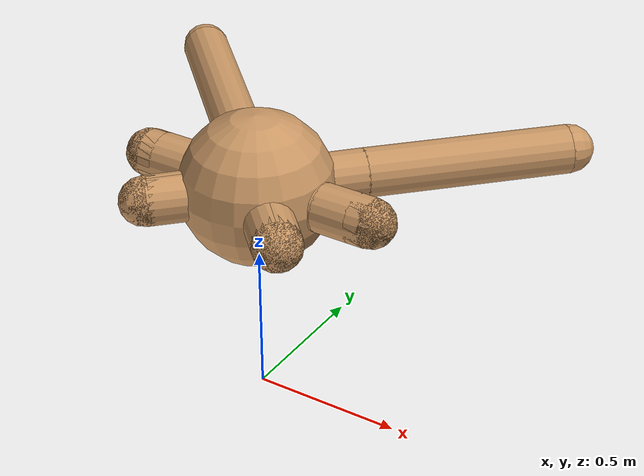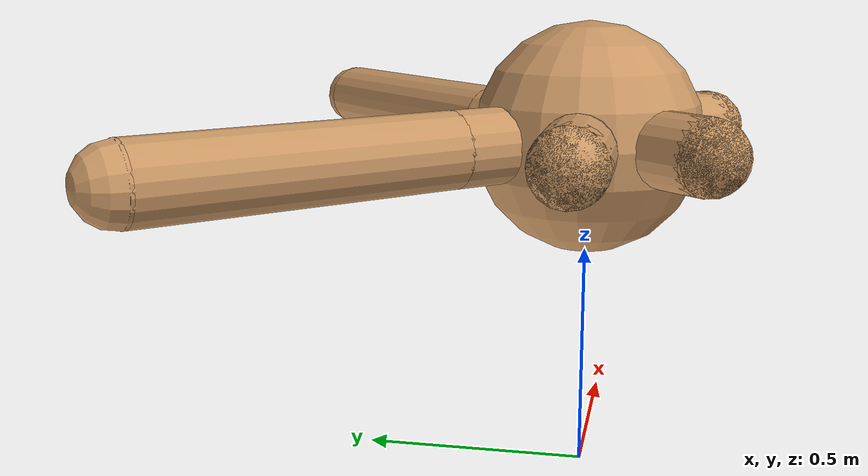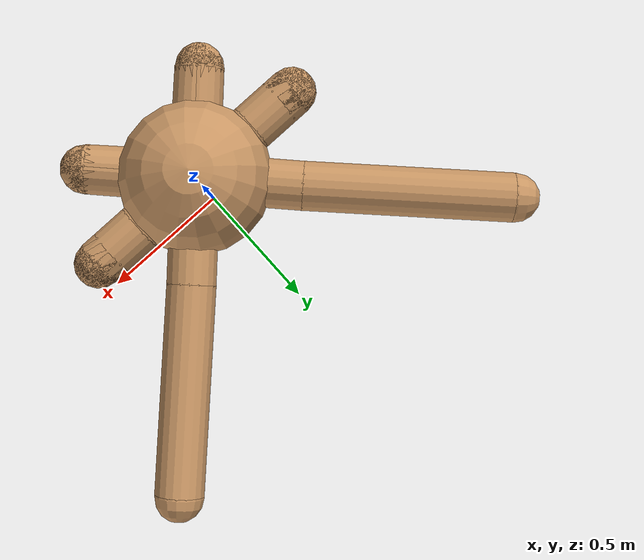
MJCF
<?xml version="1.0" ?>
<mujoco>
    <default>
        <joint armature="1" damping="1" limited="true"/>
        <geom condim="3" conaffinity="0" density="5.0" friction="1 0.5 0.5" margin="0.01"/>
    </default>
    <worldbody>
        <body name="Base" pos="0.0 0.0 0.75">
            <joint type="free" armature="0" damping="0" limited="false" margin="0.01" pos="0 0 0"/>
            <geom type="sphere" rgba="0.8 0.6 0.4 1" size="0.25"/>
            <camera name="track" mode="trackcom" pos="0 -6 0.6" xyaxes="1 0 0 0 0 1"/>
            <geom name="limb0" type="capsule" fromto="0 0 0 0.24 0.25 0.0" size="0.08" rgba="0.8 0.6 0.4 1"/>
            <body name="rod_0.1" pos="0.47848171044347243 0.48848171044347244 0.0">
                <geom type="capsule" fromto="-0.23848171044347244 -0.23848171044347244 -0.0 0.23848171044347244 0.23848171044347244 0.0" size="0.08" name="geom_0.1" rgba="0.8 0.6 0.4 1"/>
                <site pos="0 0 0" quat="0.9238795325112867 0.0 0.0 0.38268343236508984" name="site_0.1"/>
                <joint type="hinge" pos="-0.23848171044347244 -0.23848171044347244 -0.0" axis="0 0 1" range="-30 30" name="joint_Base=rod_0.1"/>
                <body pos="-0.23848171044347244 -0.23848171044347244 -0.0" name="p0">
                    <site name="p0"/>
                </body>
                <body name="rod_1.2" pos="0.24102822421364956 0.24102822421364956 0.0">
                    <geom type="capsule" fromto="-0.0025465137701771168 -0.0025465137701771168 -0.0 0.0025465137701771168 0.0025465137701771168 0.0" size="0.08" name="geom_1.2" rgba="0.8 0.6 0.4 1"/>
                    <site pos="0 0 0" quat="0.9238795325112867 0.0 0.0 0.3826834323650898" name="site_1.2"/>
                    <joint type="hinge" pos="-0.0025465137701771168 -0.0025465137701771168 -0.0" axis="-1 1 0" range="30 70" name="joint_rod_0.1=rod_1.2"/>
                    <body pos="-0.0025465137701771168 -0.0025465137701771168 -0.0" name="p1">
                        <site name="p1"/>
                    </body>
                </body>
            </body>
            <geom name="limb1" type="capsule" fromto="0 0 0 -0.24 0.25 0.0" size="0.08" rgba="0.8 0.6 0.4 1"/>
            <body name="rod_3.4" pos="-0.47848171044347243 0.48848171044347244 0.0">
                <geom type="capsule" fromto="0.23848171044347244 -0.23848171044347244 -0.0 -0.23848171044347244 0.23848171044347244 0.0" size="0.08" name="geom_3.4" rgba="0.8 0.6 0.4 1"/>
                <site pos="0 0 0" quat="0.38268343236508984 0.0 -0.0 0.9238795325112867" name="site_3.4"/>
                <joint type="hinge" pos="0.23848171044347244 -0.23848171044347244 -0.0" axis="0 0 1" range="-30 30" name="joint_Base=rod_3.4"/>
                <body pos="0.23848171044347244 -0.23848171044347244 -0.0" name="p3">
                    <site name="p3"/>
                </body>
                <body name="rod_4.5" pos="-0.24102822421364956 0.24102822421364956 0.0">
                    <geom type="capsule" fromto="0.0025465137701771168 -0.0025465137701771168 -0.0 -0.0025465137701771168 0.0025465137701771168 0.0" size="0.08" name="geom_4.5" rgba="0.8 0.6 0.4 1"/>
                    <site pos="0 0 0" quat="0.38268343236508984 0.0 -0.0 0.9238795325112867" name="site_4.5"/>
                    <joint type="hinge" pos="0.0025465137701771168 -0.0025465137701771168 -0.0" axis="1 1 0" range="30 70" name="joint_rod_3.4=rod_4.5"/>
                    <body pos="0.0025465137701771168 -0.0025465137701771168 -0.0" name="p4">
                        <site name="p4"/>
                    </body>
                </body>
            </body>
            <geom name="limb2" type="capsule" fromto="0 0 0 0.24 0.0 0.0" size="0.08" rgba="0.8 0.6 0.4 1"/>
            <body name="rod_6.7" pos="0.327570393389909 0.0 0.0">
                <geom type="capsule" fromto="-0.08757039338990899 -0.0 -0.0 0.08757039338990899 0.0 0.0" size="0.08" name="geom_6.7" rgba="0.8 0.6 0.4 1"/>
                <site pos="0 0 0" quat="1.0 0.0 0.0 0.0" name="site_6.7"/>
                <joint type="hinge" pos="-0.08757039338990899 -0.0 -0.0" axis="0 0 1" range="-30 30" name="joint_Base=rod_6.7"/>
                <body pos="-0.08757039338990899 -0.0 -0.0" name="p6">
                    <site name="p6"/>
                </body>
                <body name="rod_7.8" pos="0.060619960252114025 0.0 0.0">
                    <geom type="capsule" fromto="0.026950433137794966 -0.0 -0.0 -0.026950433137794966 0.0 0.0" size="0.08" name="geom_7.8" rgba="0.8 0.6 0.4 1"/>
                    <site pos="0 0 0" quat="0.0 1.0 0.0 0.0" name="site_7.8"/>
                    <joint type="hinge" pos="0.026950433137794966 -0.0 -0.0" axis="-1 1 0" range="-20 40" name="joint_rod_6.7=rod_7.8"/>
                    <body pos="0.026950433137794966 -0.0 -0.0" name="p7">
                        <site name="p7"/>
                    </body>
                </body>
            </body>
            <geom name="limb3" type="capsule" fromto="0 0 0 -0.24 0.0 0.0" size="0.08" rgba="0.8 0.6 0.4 1"/>
            <body name="rod_9.10" pos="-0.327570393389909 0.0 0.0">
                <geom type="capsule" fromto="0.08757039338990899 -0.0 -0.0 -0.08757039338990899 0.0 0.0" size="0.08" name="geom_9.10" rgba="0.8 0.6 0.4 1"/>
                <site pos="0 0 0" quat="0.0 1.0 0.0 0.0" name="site_9.10"/>
                <joint type="hinge" pos="0.08757039338990899 -0.0 -0.0" axis="0 0 1" range="-30 30" name="joint_Base=rod_9.10"/>
                <body pos="0.08757039338990899 -0.0 -0.0" name="p9">
                    <site name="p9"/>
                </body>
                <body name="rod_10.11" pos="-0.060619960252114025 0.0 0.0">
                    <geom type="capsule" fromto="-0.026950433137794966 -0.0 -0.0 0.026950433137794966 0.0 0.0" size="0.08" name="geom_10.11" rgba="0.8 0.6 0.4 1"/>
                    <site pos="0 0 0" quat="1.0 0.0 0.0 0.0" name="site_10.11"/>
                    <joint type="hinge" pos="-0.026950433137794966 -0.0 -0.0" axis="1 1 0" range="-20 40" name="joint_rod_9.10=rod_10.11"/>
                    <body pos="-0.026950433137794966 -0.0 -0.0" name="p10">
                        <site name="p10"/>
                    </body>
                </body>
            </body>
            <geom name="limb4" type="capsule" fromto="0 0 0 -0.24 -0.25 0.0" size="0.08" rgba="0.8 0.6 0.4 1"/>
            <body name="rod_12.13" pos="-0.24331233408652592 -0.253312334086526 0.0">
                <geom type="capsule" fromto="0.0033123340865259393 0.003312334086525953 -0.0 -0.0033123340865259393 -0.003312334086525953 0.0" size="0.08" name="geom_12.13" rgba="0.8 0.6 0.4 1"/>
                <site pos="0 0 0" quat="0.3826834323650906 0.0 -0.0 -0.9238795325112864" name="site_12.13"/>
                <joint type="hinge" pos="0.0033123340865259393 0.003312334086525953 -0.0" axis="0 0 1" range="-30 30" name="joint_Base=rod_12.13"/>
                <body pos="0.0033123340865259393 0.003312334086525953 -0.0" name="p12">
                    <site name="p12"/>
                </body>
                <body name="rod_13.14" pos="0.06016777517465341 0.060167775174653396 0.0">
                    <geom type="capsule" fromto="-0.06348010926117935 -0.06348010926117935 -0.0 0.06348010926117935 0.06348010926117935 0.0" size="0.08" name="geom_13.14" rgba="0.8 0.6 0.4 1"/>
                    <site pos="0 0 0" quat="0.9238795325112867 0.0 0.0 0.38268343236508984" name="site_13.14"/>
                    <joint type="hinge" pos="-0.06348010926117935 -0.06348010926117935 -0.0" axis="1 1 0" range="-70 -30" name="joint_rod_12.13=rod_13.14"/>
                    <body pos="-0.06348010926117935 -0.06348010926117935 -0.0" name="p13">
                        <site name="p13"/>
                    </body>
                </body>
            </body>
            <geom name="limb5" type="capsule" fromto="0 0 0 0.24 -0.25 0.0" size="0.08" rgba="0.8 0.6 0.4 1"/>
            <body name="rod_15.16" pos="0.24331233408652592 -0.253312334086526 0.0">
                <geom type="capsule" fromto="-0.0033123340865259393 0.003312334086525953 -0.0 0.0033123340865259393 -0.003312334086525953 0.0" size="0.08" name="geom_15.16" rgba="0.8 0.6 0.4 1"/>
                <site pos="0 0 0" quat="0.9238795325112864 0.0 0.0 -0.38268343236509067" name="site_15.16"/>
                <joint type="hinge" pos="-0.0033123340865259393 0.003312334086525953 -0.0" axis="0 0 1" range="-30 30" name="joint_Base=rod_15.16"/>
                <body pos="-0.0033123340865259393 0.003312334086525953 -0.0" name="p15">
                    <site name="p15"/>
                </body>
                <body name="rod_16.17" pos="-0.06016777517465341 0.060167775174653396 0.0">
                    <geom type="capsule" fromto="0.06348010926117935 -0.06348010926117935 -0.0 -0.06348010926117935 0.06348010926117935 0.0" size="0.08" name="geom_16.17" rgba="0.8 0.6 0.4 1"/>
                    <site pos="0 0 0" quat="0.38268343236508984 0.0 -0.0 0.9238795325112867" name="site_16.17"/>
                    <joint type="hinge" pos="0.06348010926117935 -0.06348010926117935 -0.0" axis="-1 1 0" range="-70 -30" name="joint_rod_15.16=rod_16.17"/>
                    <body pos="0.06348010926117935 -0.06348010926117935 -0.0" name="p16">
                        <site name="p16"/>
                    </body>
                </body>
            </body>
        </body>
    </worldbody>
    <actuator>
        <motor gear="150" ctrlrange="-1.0 1.0" ctrllimited="true" joint="joint_Base=rod_0.1"/>
        <motor gear="150" ctrlrange="-1.0 1.0" ctrllimited="true" joint="joint_rod_0.1=rod_1.2"/>
        <motor gear="150" ctrlrange="-1.0 1.0" ctrllimited="true" joint="joint_Base=rod_3.4"/>
        <motor gear="150" ctrlrange="-1.0 1.0" ctrllimited="true" joint="joint_rod_3.4=rod_4.5"/>
        <motor gear="150" ctrlrange="-1.0 1.0" ctrllimited="true" joint="joint_Base=rod_6.7"/>
        <motor gear="150" ctrlrange="-1.0 1.0" ctrllimited="true" joint="joint_rod_6.7=rod_7.8"/>
        <motor gear="150" ctrlrange="-1.0 1.0" ctrllimited="true" joint="joint_Base=rod_9.10"/>
        <motor gear="150" ctrlrange="-1.0 1.0" ctrllimited="true" joint="joint_rod_9.10=rod_10.11"/>
        <motor gear="150" ctrlrange="-1.0 1.0" ctrllimited="true" joint="joint_Base=rod_12.13"/>
        <motor gear="150" ctrlrange="-1.0 1.0" ctrllimited="true" joint="joint_rod_12.13=rod_13.14"/>
        <motor gear="150" ctrlrange="-1.0 1.0" ctrllimited="true" joint="joint_Base=rod_15.16"/>
        <motor gear="150" ctrlrange="-1.0 1.0" ctrllimited="true" joint="joint_rod_15.16=rod_16.17"/>
    </actuator>
    <sensor>
        <accelerometer site="site_0.1"/>
        <gyro site="site_0.1"/>
        <magnetometer site="site_0.1"/>
        <accelerometer site="site_1.2"/>
        <gyro site="site_1.2"/>
        <magnetometer site="site_1.2"/>
        <accelerometer site="site_3.4"/>
        <gyro site="site_3.4"/>
        <magnetometer site="site_3.4"/>
        <accelerometer site="site_4.5"/>
        <gyro site="site_4.5"/>
        <magnetometer site="site_4.5"/>
        <accelerometer site="site_6.7"/>
        <gyro site="site_6.7"/>
        <magnetometer site="site_6.7"/>
        <accelerometer site="site_7.8"/>
        <gyro site="site_7.8"/>
        <magnetometer site="site_7.8"/>
        <accelerometer site="site_9.10"/>
        <gyro site="site_9.10"/>
        <magnetometer site="site_9.10"/>
        <accelerometer site="site_10.11"/>
        <gyro site="site_10.11"/>
        <magnetometer site="site_10.11"/>
        <accelerometer site="site_12.13"/>
        <gyro site="site_12.13"/>
        <magnetometer site="site_12.13"/>
        <accelerometer site="site_13.14"/>
        <gyro site="site_13.14"/>
        <magnetometer site="site_13.14"/>
        <accelerometer site="site_15.16"/>
        <gyro site="site_15.16"/>
        <magnetometer site="site_15.16"/>
        <accelerometer site="site_16.17"/>
        <gyro site="site_16.17"/>
        <magnetometer site="site_16.17"/>
    </sensor>
    <contact>
        <pair geom1="geom_0.1" geom2="floor"/>
        <pair geom1="geom_1.2" geom2="floor"/>
        <pair geom1="geom_3.4" geom2="floor"/>
        <pair geom1="geom_4.5" geom2="floor"/>
        <pair geom1="geom_6.7" geom2="floor"/>
        <pair geom1="geom_7.8" geom2="floor"/>
        <pair geom1="geom_9.10" geom2="floor"/>
        <pair geom1="geom_10.11" geom2="floor"/>
        <pair geom1="geom_12.13" geom2="floor"/>
        <pair geom1="geom_13.14" geom2="floor"/>
        <pair geom1="geom_15.16" geom2="floor"/>
        <pair geom1="geom_16.17" geom2="floor"/>
    </contact>
</mujoco>
